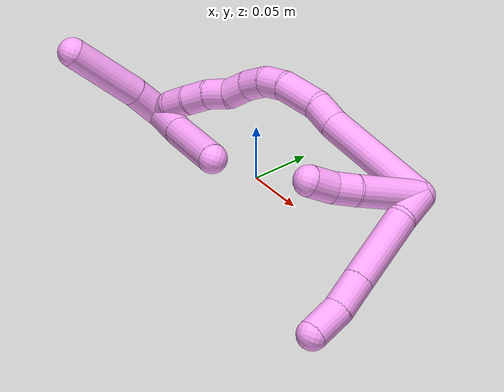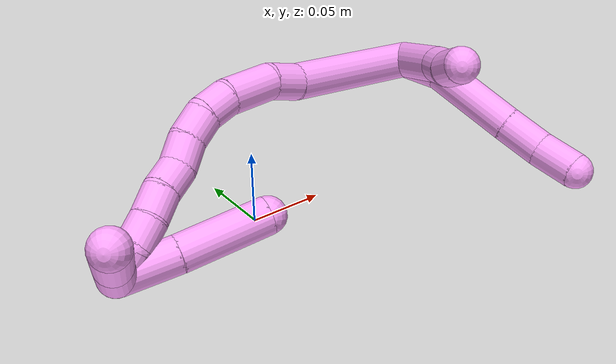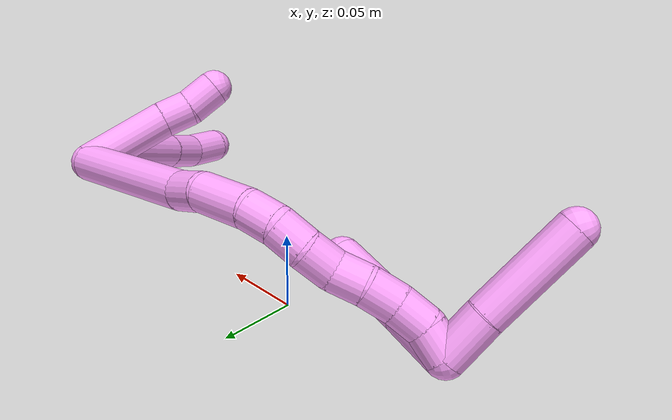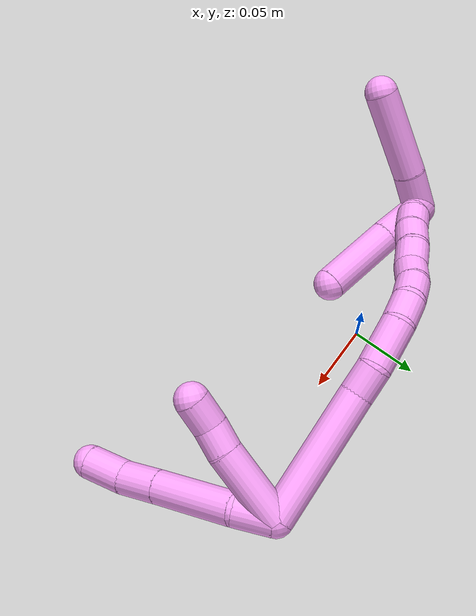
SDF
<sdf version="1.7">
 <world name="default">
  <model name="4">
   <static>0</static>
   <link name="4">
    <collision name="collision-cylinder-e_1_2_8">
     <pose>0.011867 -0.006262 0.005967 0.809455 0.940926 0.428998</pose>
     <geometry><cylinder><radius>0.0125</radius><length>0.029369</length></cylinder></geometry>
     <surface>
      <friction><ode><mu>1.16</mu><mu2>1.16</mu2><slip1>0</slip1><slip2>0</slip2></ode></friction>
      <contact><ode><kp>1e+06</kp><kd>1</kd><max_vel>0</max_vel><min_depth>0.001</min_depth></ode></contact>
     </surface>
    </collision>
    <visual name="visual-cylinder-e_1_2_8">
     <pose>0.011867 -0.006262 0.005967 0.809455 0.940926 0.428998</pose>
     <geometry><cylinder><radius>0.0125</radius><length>0.029369</length></cylinder></geometry>
     <material><ambient>1 0.65098 0.996078 1</ambient></material>
    </visual>
    <collision name="collision-cylinder-e_2_8_9">
     <pose>0.043737 -0.033642 0.022266 1.11583 0.705004 0.451314</pose>
     <geometry><cylinder><radius>0.0125</radius><length>0.061738</length></cylinder></geometry>
     <surface>
      <friction><ode><mu>1.16</mu><mu2>1.16</mu2><slip1>0</slip1><slip2>0</slip2></ode></friction>
      <contact><ode><kp>1e+06</kp><kd>1</kd><max_vel>0</max_vel><min_depth>0.001</min_depth></ode></contact>
     </surface>
    </collision>
    <visual name="visual-cylinder-e_2_8_9">
     <pose>0.043737 -0.033642 0.022266 1.11583 0.705004 0.451314</pose>
     <geometry><cylinder><radius>0.0125</radius><length>0.061738</length></cylinder></geometry>
     <material><ambient>1 0.65098 0.996078 1</ambient></material>
    </visual>
    <collision name="collision-cylinder-e_3_9_10">
     <pose>0.073528 -0.064663 0.037417 1.11783 0.72648 0.466799</pose>
     <geometry><cylinder><radius>0.0125</radius><length>0.029465</length></cylinder></geometry>
     <surface>
      <friction><ode><mu>1.16</mu><mu2>1.16</mu2><slip1>0</slip1><slip2>0</slip2></ode></friction>
      <contact><ode><kp>1e+06</kp><kd>1</kd><max_vel>0</max_vel><min_depth>0.001</min_depth></ode></contact>
     </surface>
    </collision>
    <visual name="visual-cylinder-e_3_9_10">
     <pose>0.073528 -0.064663 0.037417 1.11783 0.72648 0.466799</pose>
     <geometry><cylinder><radius>0.0125</radius><length>0.029465</length></cylinder></geometry>
     <material><ambient>1 0.65098 0.996078 1</ambient></material>
    </visual>
    <collision name="collision-cylinder-e_4_10_6">
     <pose>0.093125 -0.082625 0.04967 0.825837 0.729941 0.331714</pose>
     <geometry><cylinder><radius>0.0125</radius><length>0.029428</length></cylinder></geometry>
     <surface>
      <friction><ode><mu>1.16</mu><mu2>1.16</mu2><slip1>0</slip1><slip2>0</slip2></ode></friction>
      <contact><ode><kp>1e+06</kp><kd>1</kd><max_vel>0</max_vel><min_depth>0.001</min_depth></ode></contact>
     </surface>
    </collision>
    <visual name="visual-cylinder-e_4_10_6">
     <pose>0.093125 -0.082625 0.04967 0.825837 0.729941 0.331714</pose>
     <geometry><cylinder><radius>0.0125</radius><length>0.029428</length></cylinder></geometry>
     <material><ambient>1 0.65098 0.996078 1</ambient></material>
    </visual>
    <collision name="collision-cylinder-e_1_2_11">
     <pose>0.011808 -0.001509 0.026323 0.057279 0.421049 0.012243</pose>
     <geometry><cylinder><radius>0.0125</radius><length>0.05778</length></cylinder></geometry>
     <surface>
      <friction><ode><mu>1.16</mu><mu2>1.16</mu2><slip1>0</slip1><slip2>0</slip2></ode></friction>
      <contact><ode><kp>1e+06</kp><kd>1</kd><max_vel>0</max_vel><min_depth>0.001</min_depth></ode></contact>
     </surface>
    </collision>
    <visual name="visual-cylinder-e_1_2_11">
     <pose>0.011808 -0.001509 0.026323 0.057279 0.421049 0.012243</pose>
     <geometry><cylinder><radius>0.0125</radius><length>0.05778</length></cylinder></geometry>
     <material><ambient>1 0.65098 0.996078 1</ambient></material>
    </visual>
    <collision name="collision-cylinder-e_2_11_12">
     <pose>0.02641 -0.0039 0.062331 0.090724 0.279865 0.012787</pose>
     <geometry><cylinder><radius>0.0125</radius><length>0.020236</length></cylinder></geometry>
     <surface>
      <friction><ode><mu>1.16</mu><mu2>1.16</mu2><slip1>0</slip1><slip2>0</slip2></ode></friction>
      <contact><ode><kp>1e+06</kp><kd>1</kd><max_vel>0</max_vel><min_depth>0.001</min_depth></ode></contact>
     </surface>
    </collision>
    <visual name="visual-cylinder-e_2_11_12">
     <pose>0.02641 -0.0039 0.062331 0.090724 0.279865 0.012787</pose>
     <geometry><cylinder><radius>0.0125</radius><length>0.020236</length></cylinder></geometry>
     <material><ambient>1 0.65098 0.996078 1</ambient></material>
    </visual>
    <collision name="collision-cylinder-e_3_12_5">
     <pose>0.033551 -0.003391 0.082016 -0.138114 0.406419 -0.028502</pose>
     <geometry><cylinder><radius>0.0125</radius><length>0.021984</length></cylinder></geometry>
     <surface>
      <friction><ode><mu>1.16</mu><mu2>1.16</mu2><slip1>0</slip1><slip2>0</slip2></ode></friction>
      <contact><ode><kp>1e+06</kp><kd>1</kd><max_vel>0</max_vel><min_depth>0.001</min_depth></ode></contact>
     </surface>
    </collision>
    <visual name="visual-cylinder-e_3_12_5">
     <pose>0.033551 -0.003391 0.082016 -0.138114 0.406419 -0.028502</pose>
     <geometry><cylinder><radius>0.0125</radius><length>0.021984</length></cylinder></geometry>
     <material><ambient>1 0.65098 0.996078 1</ambient></material>
    </visual>
    <collision name="collision-cylinder-e_1_2_13">
     <pose>-0.03665 0.002116 0.034382 -0.061478 -0.816366 0.026594</pose>
     <geometry><cylinder><radius>0.0125</radius><length>0.100595</length></cylinder></geometry>
     <surface>
      <friction><ode><mu>1.16</mu><mu2>1.16</mu2><slip1>0</slip1><slip2>0</slip2></ode></friction>
      <contact><ode><kp>1e+06</kp><kd>1</kd><max_vel>0</max_vel><min_depth>0.001</min_depth></ode></contact>
     </surface>
    </collision>
    <visual name="visual-cylinder-e_1_2_13">
     <pose>-0.03665 0.002116 0.034382 -0.061478 -0.816366 0.026594</pose>
     <geometry><cylinder><radius>0.0125</radius><length>0.100595</length></cylinder></geometry>
     <material><ambient>1 0.65098 0.996078 1</ambient></material>
    </visual>
    <collision name="collision-cylinder-e_2_13_14">
     <pose>-0.08092 0.006676 0.07658 -0.302983 -0.749434 0.119939</pose>
     <geometry><cylinder><radius>0.0125</radius><length>0.022372</length></cylinder></geometry>
     <surface>
      <friction><ode><mu>1.16</mu><mu2>1.16</mu2><slip1>0</slip1><slip2>0</slip2></ode></friction>
      <contact><ode><kp>1e+06</kp><kd>1</kd><max_vel>0</max_vel><min_depth>0.001</min_depth></ode></contact>
     </surface>
    </collision>
    <visual name="visual-cylinder-e_2_13_14">
     <pose>-0.08092 0.006676 0.07658 -0.302983 -0.749434 0.119939</pose>
     <geometry><cylinder><radius>0.0125</radius><length>0.022372</length></cylinder></geometry>
     <material><ambient>1 0.65098 0.996078 1</ambient></material>
    </visual>
    <collision name="collision-cylinder-e_3_14_15">
     <pose>-0.101326 0.007574 0.097058 0.121493 -0.786594 -0.050461</pose>
     <geometry><cylinder><radius>0.0125</radius><length>0.03612</length></cylinder></geometry>
     <surface>
      <friction><ode><mu>1.16</mu><mu2>1.16</mu2><slip1>0</slip1><slip2>0</slip2></ode></friction>
      <contact><ode><kp>1e+06</kp><kd>1</kd><max_vel>0</max_vel><min_depth>0.001</min_depth></ode></contact>
     </surface>
    </collision>
    <visual name="visual-cylinder-e_3_14_15">
     <pose>-0.101326 0.007574 0.097058 0.121493 -0.786594 -0.050461</pose>
     <geometry><cylinder><radius>0.0125</radius><length>0.03612</length></cylinder></geometry>
     <material><ambient>1 0.65098 0.996078 1</ambient></material>
    </visual>
    <collision name="collision-cylinder-e_4_15_16">
     <pose>-0.12107 0.002605 0.116404 0.473194 -0.747315 -0.188509</pose>
     <geometry><cylinder><radius>0.0125</radius><length>0.020478</length></cylinder></geometry>
     <surface>
      <friction><ode><mu>1.16</mu><mu2>1.16</mu2><slip1>0</slip1><slip2>0</slip2></ode></friction>
      <contact><ode><kp>1e+06</kp><kd>1</kd><max_vel>0</max_vel><min_depth>0.001</min_depth></ode></contact>
     </surface>
    </collision>
    <visual name="visual-cylinder-e_4_15_16">
     <pose>-0.12107 0.002605 0.116404 0.473194 -0.747315 -0.188509</pose>
     <geometry><cylinder><radius>0.0125</radius><length>0.020478</length></cylinder></geometry>
     <material><ambient>1 0.65098 0.996078 1</ambient></material>
    </visual>
    <collision name="collision-cylinder-e_5_16_17">
     <pose>-0.133799 -0.007207 0.128401 0.877265 -0.606918 -0.2917</pose>
     <geometry><cylinder><radius>0.0125</radius><length>0.020231</length></cylinder></geometry>
     <surface>
      <friction><ode><mu>1.16</mu><mu2>1.16</mu2><slip1>0</slip1><slip2>0</slip2></ode></friction>
      <contact><ode><kp>1e+06</kp><kd>1</kd><max_vel>0</max_vel><min_depth>0.001</min_depth></ode></contact>
     </surface>
    </collision>
    <visual name="visual-cylinder-e_5_16_17">
     <pose>-0.133799 -0.007207 0.128401 0.877265 -0.606918 -0.2917</pose>
     <geometry><cylinder><radius>0.0125</radius><length>0.020231</length></cylinder></geometry>
     <material><ambient>1 0.65098 0.996078 1</ambient></material>
    </visual>
    <collision name="collision-cylinder-e_6_17_18">
     <pose>-0.143329 -0.02126 0.139 0.966801 -0.383912 -0.20334</pose>
     <geometry><cylinder><radius>0.0125</radius><length>0.020084</length></cylinder></geometry>
     <surface>
      <friction><ode><mu>1.16</mu><mu2>1.16</mu2><slip1>0</slip1><slip2>0</slip2></ode></friction>
      <contact><ode><kp>1e+06</kp><kd>1</kd><max_vel>0</max_vel><min_depth>0.001</min_depth></ode></contact>
     </surface>
    </collision>
    <visual name="visual-cylinder-e_6_17_18">
     <pose>-0.143329 -0.02126 0.139 0.966801 -0.383912 -0.20334</pose>
     <geometry><cylinder><radius>0.0125</radius><length>0.020084</length></cylinder></geometry>
     <material><ambient>1 0.65098 0.996078 1</ambient></material>
    </visual>
    <collision name="collision-cylinder-e_7_18_19">
     <pose>-0.151832 -0.033967 0.151565 0.605967 -0.491717 -0.156568</pose>
     <geometry><cylinder><radius>0.0125</radius><length>0.020087</length></cylinder></geometry>
     <surface>
      <friction><ode><mu>1.16</mu><mu2>1.16</mu2><slip1>0</slip1><slip2>0</slip2></ode></friction>
      <contact><ode><kp>1e+06</kp><kd>1</kd><max_vel>0</max_vel><min_depth>0.001</min_depth></ode></contact>
     </surface>
    </collision>
    <visual name="visual-cylinder-e_7_18_19">
     <pose>-0.151832 -0.033967 0.151565 0.605967 -0.491717 -0.156568</pose>
     <geometry><cylinder><radius>0.0125</radius><length>0.020087</length></cylinder></geometry>
     <material><ambient>1 0.65098 0.996078 1</ambient></material>
    </visual>
    <collision name="collision-cylinder-e_8_19_20">
     <pose>-0.160527 -0.04577 0.165088 0.825037 -0.40567 -0.179525</pose>
     <geometry><cylinder><radius>0.0125</radius><length>0.020033</length></cylinder></geometry>
     <surface>
      <friction><ode><mu>1.16</mu><mu2>1.16</mu2><slip1>0</slip1><slip2>0</slip2></ode></friction>
      <contact><ode><kp>1e+06</kp><kd>1</kd><max_vel>0</max_vel><min_depth>0.001</min_depth></ode></contact>
     </surface>
    </collision>
    <visual name="visual-cylinder-e_8_19_20">
     <pose>-0.160527 -0.04577 0.165088 0.825037 -0.40567 -0.179525</pose>
     <geometry><cylinder><radius>0.0125</radius><length>0.020033</length></cylinder></geometry>
     <material><ambient>1 0.65098 0.996078 1</ambient></material>
    </visual>
    <collision name="collision-cylinder-e_9_20_21">
     <pose>-0.169512 -0.059363 0.176623 0.911928 -0.527322 -0.263249</pose>
     <geometry><cylinder><radius>0.0125</radius><length>0.02</length></cylinder></geometry>
     <surface>
      <friction><ode><mu>1.16</mu><mu2>1.16</mu2><slip1>0</slip1><slip2>0</slip2></ode></friction>
      <contact><ode><kp>1e+06</kp><kd>1</kd><max_vel>0</max_vel><min_depth>0.001</min_depth></ode></contact>
     </surface>
    </collision>
    <visual name="visual-cylinder-e_9_20_21">
     <pose>-0.169512 -0.059363 0.176623 0.911928 -0.527322 -0.263249</pose>
     <geometry><cylinder><radius>0.0125</radius><length>0.02</length></cylinder></geometry>
     <material><ambient>1 0.65098 0.996078 1</ambient></material>
    </visual>
    <collision name="collision-cylinder-e_10_21_1">
     <pose>-0.18085 -0.073601 0.184238 1.26666 -0.682319 -0.51001</pose>
     <geometry><cylinder><radius>0.0125</radius><length>0.02</length></cylinder></geometry>
     <surface>
      <friction><ode><mu>1.16</mu><mu2>1.16</mu2><slip1>0</slip1><slip2>0</slip2></ode></friction>
      <contact><ode><kp>1e+06</kp><kd>1</kd><max_vel>0</max_vel><min_depth>0.001</min_depth></ode></contact>
     </surface>
    </collision>
    <visual name="visual-cylinder-e_10_21_1">
     <pose>-0.18085 -0.073601 0.184238 1.26666 -0.682319 -0.51001</pose>
     <geometry><cylinder><radius>0.0125</radius><length>0.02</length></cylinder></geometry>
     <material><ambient>1 0.65098 0.996078 1</ambient></material>
    </visual>
    <collision name="collision-cylinder-e_1_1_22">
     <pose>-0.183172 -0.074276 0.200639 -0.445965 0.250024 -0.056976</pose>
     <geometry><cylinder><radius>0.0125</radius><length>0.032207</length></cylinder></geometry>
     <surface>
      <friction><ode><mu>1.16</mu><mu2>1.16</mu2><slip1>0</slip1><slip2>0</slip2></ode></friction>
      <contact><ode><kp>1e+06</kp><kd>1</kd><max_vel>0</max_vel><min_depth>0.001</min_depth></ode></contact>
     </surface>
    </collision>
    <visual name="visual-cylinder-e_1_1_22">
     <pose>-0.183172 -0.074276 0.200639 -0.445965 0.250024 -0.056976</pose>
     <geometry><cylinder><radius>0.0125</radius><length>0.032207</length></cylinder></geometry>
     <material><ambient>1 0.65098 0.996078 1</ambient></material>
    </visual>
    <collision name="collision-cylinder-e_2_22_4">
     <pose>-0.169967 -0.05619 0.245293 -0.35561 0.275483 -0.04981</pose>
     <geometry><cylinder><radius>0.0125</radius><length>0.067793</length></cylinder></geometry>
     <surface>
      <friction><ode><mu>1.16</mu><mu2>1.16</mu2><slip1>0</slip1><slip2>0</slip2></ode></friction>
      <contact><ode><kp>1e+06</kp><kd>1</kd><max_vel>0</max_vel><min_depth>0.001</min_depth></ode></contact>
     </surface>
    </collision>
    <visual name="visual-cylinder-e_2_22_4">
     <pose>-0.169967 -0.05619 0.245293 -0.35561 0.275483 -0.04981</pose>
     <geometry><cylinder><radius>0.0125</radius><length>0.067793</length></cylinder></geometry>
     <material><ambient>1 0.65098 0.996078 1</ambient></material>
    </visual>
    <collision name="collision-cylinder-e_1_1_23">
     <pose>-0.169287 -0.078862 0.178665 -2.87646 1.14136 -2.73196</pose>
     <geometry><cylinder><radius>0.0125</radius><length>0.039307</length></cylinder></geometry>
     <surface>
      <friction><ode><mu>1.16</mu><mu2>1.16</mu2><slip1>0</slip1><slip2>0</slip2></ode></friction>
      <contact><ode><kp>1e+06</kp><kd>1</kd><max_vel>0</max_vel><min_depth>0.001</min_depth></ode></contact>
     </surface>
    </collision>
    <visual name="visual-cylinder-e_1_1_23">
     <pose>-0.169287 -0.078862 0.178665 -2.87646 1.14136 -2.73196</pose>
     <geometry><cylinder><radius>0.0125</radius><length>0.039307</length></cylinder></geometry>
     <material><ambient>1 0.65098 0.996078 1</ambient></material>
    </visual>
    <collision name="collision-cylinder-e_2_23_3">
     <pose>-0.124332 -0.072066 0.1579 -2.7947 1.10301 -2.58668</pose>
     <geometry><cylinder><radius>0.0125</radius><length>0.060693</length></cylinder></geometry>
     <surface>
      <friction><ode><mu>1.16</mu><mu2>1.16</mu2><slip1>0</slip1><slip2>0</slip2></ode></friction>
      <contact><ode><kp>1e+06</kp><kd>1</kd><max_vel>0</max_vel><min_depth>0.001</min_depth></ode></contact>
     </surface>
    </collision>
    <visual name="visual-cylinder-e_2_23_3">
     <pose>-0.124332 -0.072066 0.1579 -2.7947 1.10301 -2.58668</pose>
     <geometry><cylinder><radius>0.0125</radius><length>0.060693</length></cylinder></geometry>
     <material><ambient>1 0.65098 0.996078 1</ambient></material>
    </visual>
    <collision name="collision-sphere-3">
     <pose>-0.097246 -0.067414 0.145031 0 -0 0</pose>
     <geometry><sphere><radius>0.0125</radius></sphere></geometry>
     <surface>
      <friction><ode><mu>1.16</mu><mu2>1.16</mu2><slip1>0</slip1><slip2>0</slip2></ode></friction>
      <contact><ode><kp>1e+06</kp><kd>1</kd><max_vel>0</max_vel><min_depth>0.001</min_depth></ode></contact>
     </surface>
    </collision>
    <visual name="visual-sphere-3">
     <pose>-0.097246 -0.067414 0.145031 0 -0 0</pose>
     <geometry><sphere><radius>0.0125</radius></sphere></geometry>
     <material><ambient>1 0.65098 0.996078 1</ambient></material>
    </visual>
    <collision name="collision-sphere-23">
     <pose>-0.151418 -0.076718 0.170768 0 -0 0</pose>
     <geometry><sphere><radius>0.0125</radius></sphere></geometry>
     <surface>
      <friction><ode><mu>1.16</mu><mu2>1.16</mu2><slip1>0</slip1><slip2>0</slip2></ode></friction>
      <contact><ode><kp>1e+06</kp><kd>1</kd><max_vel>0</max_vel><min_depth>0.001</min_depth></ode></contact>
     </surface>
    </collision>
    <visual name="visual-sphere-23">
     <pose>-0.151418 -0.076718 0.170768 0 -0 0</pose>
     <geometry><sphere><radius>0.0125</radius></sphere></geometry>
     <material><ambient>1 0.65098 0.996078 1</ambient></material>
    </visual>
    <collision name="collision-sphere-4">
     <pose>-0.160747 -0.044833 0.275871 0 -0 0</pose>
     <geometry><sphere><radius>0.0125</radius></sphere></geometry>
     <surface>
      <friction><ode><mu>1.16</mu><mu2>1.16</mu2><slip1>0</slip1><slip2>0</slip2></ode></friction>
      <contact><ode><kp>1e+06</kp><kd>1</kd><max_vel>0</max_vel><min_depth>0.001</min_depth></ode></contact>
     </surface>
    </collision>
    <visual name="visual-sphere-4">
     <pose>-0.160747 -0.044833 0.275871 0 -0 0</pose>
     <geometry><sphere><radius>0.0125</radius></sphere></geometry>
     <material><ambient>1 0.65098 0.996078 1</ambient></material>
    </visual>
    <collision name="collision-sphere-22">
     <pose>-0.179188 -0.067546 0.214715 0 -0 0</pose>
     <geometry><sphere><radius>0.0125</radius></sphere></geometry>
     <surface>
      <friction><ode><mu>1.16</mu><mu2>1.16</mu2><slip1>0</slip1><slip2>0</slip2></ode></friction>
      <contact><ode><kp>1e+06</kp><kd>1</kd><max_vel>0</max_vel><min_depth>0.001</min_depth></ode></contact>
     </surface>
    </collision>
    <visual name="visual-sphere-22">
     <pose>-0.179188 -0.067546 0.214715 0 -0 0</pose>
     <geometry><sphere><radius>0.0125</radius></sphere></geometry>
     <material><ambient>1 0.65098 0.996078 1</ambient></material>
    </visual>
    <collision name="collision-sphere-1">
     <pose>-0.187156 -0.081006 0.186562 0 -0 0</pose>
     <geometry><sphere><radius>0.0125</radius></sphere></geometry>
     <surface>
      <friction><ode><mu>1.16</mu><mu2>1.16</mu2><slip1>0</slip1><slip2>0</slip2></ode></friction>
      <contact><ode><kp>1e+06</kp><kd>1</kd><max_vel>0</max_vel><min_depth>0.001</min_depth></ode></contact>
     </surface>
    </collision>
    <visual name="visual-sphere-1">
     <pose>-0.187156 -0.081006 0.186562 0 -0 0</pose>
     <geometry><sphere><radius>0.0125</radius></sphere></geometry>
     <material><ambient>1 0.65098 0.996078 1</ambient></material>
    </visual>
    <collision name="collision-sphere-21">
     <pose>-0.174544 -0.066196 0.181914 0 -0 0</pose>
     <geometry><sphere><radius>0.0125</radius></sphere></geometry>
     <surface>
      <friction><ode><mu>1.16</mu><mu2>1.16</mu2><slip1>0</slip1><slip2>0</slip2></ode></friction>
      <contact><ode><kp>1e+06</kp><kd>1</kd><max_vel>0</max_vel><min_depth>0.001</min_depth></ode></contact>
     </surface>
    </collision>
    <visual name="visual-sphere-21">
     <pose>-0.174544 -0.066196 0.181914 0 -0 0</pose>
     <geometry><sphere><radius>0.0125</radius></sphere></geometry>
     <material><ambient>1 0.65098 0.996078 1</ambient></material>
    </visual>
    <collision name="collision-sphere-11">
     <pose>0.023616 -0.003019 0.052647 0 -0 0</pose>
     <geometry><sphere><radius>0.0125</radius></sphere></geometry>
     <surface>
      <friction><ode><mu>1.16</mu><mu2>1.16</mu2><slip1>0</slip1><slip2>0</slip2></ode></friction>
      <contact><ode><kp>1e+06</kp><kd>1</kd><max_vel>0</max_vel><min_depth>0.001</min_depth></ode></contact>
     </surface>
    </collision>
    <visual name="visual-sphere-11">
     <pose>0.023616 -0.003019 0.052647 0 -0 0</pose>
     <geometry><sphere><radius>0.0125</radius></sphere></geometry>
     <material><ambient>1 0.65098 0.996078 1</ambient></material>
    </visual>
    <collision name="collision-sphere-6">
     <pose>0.102937 -0.090686 0.057104 0 -0 0</pose>
     <geometry><sphere><radius>0.0125</radius></sphere></geometry>
     <surface>
      <friction><ode><mu>1.16</mu><mu2>1.16</mu2><slip1>0</slip1><slip2>0</slip2></ode></friction>
      <contact><ode><kp>1e+06</kp><kd>1</kd><max_vel>0</max_vel><min_depth>0.001</min_depth></ode></contact>
     </surface>
    </collision>
    <visual name="visual-sphere-6">
     <pose>0.102937 -0.090686 0.057104 0 -0 0</pose>
     <geometry><sphere><radius>0.0125</radius></sphere></geometry>
     <material><ambient>1 0.65098 0.996078 1</ambient></material>
    </visual>
    <collision name="collision-sphere-10">
     <pose>0.083314 -0.074565 0.042236 0 -0 0</pose>
     <geometry><sphere><radius>0.0125</radius></sphere></geometry>
     <surface>
      <friction><ode><mu>1.16</mu><mu2>1.16</mu2><slip1>0</slip1><slip2>0</slip2></ode></friction>
      <contact><ode><kp>1e+06</kp><kd>1</kd><max_vel>0</max_vel><min_depth>0.001</min_depth></ode></contact>
     </surface>
    </collision>
    <visual name="visual-sphere-10">
     <pose>0.083314 -0.074565 0.042236 0 -0 0</pose>
     <geometry><sphere><radius>0.0125</radius></sphere></geometry>
     <material><ambient>1 0.65098 0.996078 1</ambient></material>
    </visual>
    <collision name="collision-sphere-9">
     <pose>0.063742 -0.05476 0.032597 0 -0 0</pose>
     <geometry><sphere><radius>0.0125</radius></sphere></geometry>
     <surface>
      <friction><ode><mu>1.16</mu><mu2>1.16</mu2><slip1>0</slip1><slip2>0</slip2></ode></friction>
      <contact><ode><kp>1e+06</kp><kd>1</kd><max_vel>0</max_vel><min_depth>0.001</min_depth></ode></contact>
     </surface>
    </collision>
    <visual name="visual-sphere-9">
     <pose>0.063742 -0.05476 0.032597 0 -0 0</pose>
     <geometry><sphere><radius>0.0125</radius></sphere></geometry>
     <material><ambient>1 0.65098 0.996078 1</ambient></material>
    </visual>
    <collision name="collision-sphere-2">
     <geometry><sphere><radius>0.0125</radius></sphere></geometry>
     <surface>
      <friction><ode><mu>1.16</mu><mu2>1.16</mu2><slip1>0</slip1><slip2>0</slip2></ode></friction>
      <contact><ode><kp>1e+06</kp><kd>1</kd><max_vel>0</max_vel><min_depth>0.001</min_depth></ode></contact>
     </surface>
    </collision>
    <visual name="visual-sphere-2">
     <geometry><sphere><radius>0.0125</radius></sphere></geometry>
     <material><ambient>1 0.65098 0.996078 1</ambient></material>
    </visual>
    <collision name="collision-sphere-19">
     <pose>-0.156574 -0.039009 0.158843 0 -0 0</pose>
     <geometry><sphere><radius>0.0125</radius></sphere></geometry>
     <surface>
      <friction><ode><mu>1.16</mu><mu2>1.16</mu2><slip1>0</slip1><slip2>0</slip2></ode></friction>
      <contact><ode><kp>1e+06</kp><kd>1</kd><max_vel>0</max_vel><min_depth>0.001</min_depth></ode></contact>
     </surface>
    </collision>
    <visual name="visual-sphere-19">
     <pose>-0.156574 -0.039009 0.158843 0 -0 0</pose>
     <geometry><sphere><radius>0.0125</radius></sphere></geometry>
     <material><ambient>1 0.65098 0.996078 1</ambient></material>
    </visual>
    <collision name="collision-sphere-8">
     <pose>0.023733 -0.012523 0.011935 0 -0 0</pose>
     <geometry><sphere><radius>0.0125</radius></sphere></geometry>
     <surface>
      <friction><ode><mu>1.16</mu><mu2>1.16</mu2><slip1>0</slip1><slip2>0</slip2></ode></friction>
      <contact><ode><kp>1e+06</kp><kd>1</kd><max_vel>0</max_vel><min_depth>0.001</min_depth></ode></contact>
     </surface>
    </collision>
    <visual name="visual-sphere-8">
     <pose>0.023733 -0.012523 0.011935 0 -0 0</pose>
     <geometry><sphere><radius>0.0125</radius></sphere></geometry>
     <material><ambient>1 0.65098 0.996078 1</ambient></material>
    </visual>
    <collision name="collision-sphere-12">
     <pose>0.029205 -0.004781 0.072016 0 -0 0</pose>
     <geometry><sphere><radius>0.0125</radius></sphere></geometry>
     <surface>
      <friction><ode><mu>1.16</mu><mu2>1.16</mu2><slip1>0</slip1><slip2>0</slip2></ode></friction>
      <contact><ode><kp>1e+06</kp><kd>1</kd><max_vel>0</max_vel><min_depth>0.001</min_depth></ode></contact>
     </surface>
    </collision>
    <visual name="visual-sphere-12">
     <pose>0.029205 -0.004781 0.072016 0 -0 0</pose>
     <geometry><sphere><radius>0.0125</radius></sphere></geometry>
     <material><ambient>1 0.65098 0.996078 1</ambient></material>
    </visual>
    <collision name="collision-sphere-5">
     <pose>0.037896 -0.002001 0.092017 0 -0 0</pose>
     <geometry><sphere><radius>0.0125</radius></sphere></geometry>
     <surface>
      <friction><ode><mu>1.16</mu><mu2>1.16</mu2><slip1>0</slip1><slip2>0</slip2></ode></friction>
      <contact><ode><kp>1e+06</kp><kd>1</kd><max_vel>0</max_vel><min_depth>0.001</min_depth></ode></contact>
     </surface>
    </collision>
    <visual name="visual-sphere-5">
     <pose>0.037896 -0.002001 0.092017 0 -0 0</pose>
     <geometry><sphere><radius>0.0125</radius></sphere></geometry>
     <material><ambient>1 0.65098 0.996078 1</ambient></material>
    </visual>
    <collision name="collision-sphere-13">
     <pose>-0.073299 0.004233 0.068764 0 -0 0</pose>
     <geometry><sphere><radius>0.0125</radius></sphere></geometry>
     <surface>
      <friction><ode><mu>1.16</mu><mu2>1.16</mu2><slip1>0</slip1><slip2>0</slip2></ode></friction>
      <contact><ode><kp>1e+06</kp><kd>1</kd><max_vel>0</max_vel><min_depth>0.001</min_depth></ode></contact>
     </surface>
    </collision>
    <visual name="visual-sphere-13">
     <pose>-0.073299 0.004233 0.068764 0 -0 0</pose>
     <geometry><sphere><radius>0.0125</radius></sphere></geometry>
     <material><ambient>1 0.65098 0.996078 1</ambient></material>
    </visual>
    <collision name="collision-sphere-14">
     <pose>-0.08854 0.00912 0.084396 0 -0 0</pose>
     <geometry><sphere><radius>0.0125</radius></sphere></geometry>
     <surface>
      <friction><ode><mu>1.16</mu><mu2>1.16</mu2><slip1>0</slip1><slip2>0</slip2></ode></friction>
      <contact><ode><kp>1e+06</kp><kd>1</kd><max_vel>0</max_vel><min_depth>0.001</min_depth></ode></contact>
     </surface>
    </collision>
    <visual name="visual-sphere-14">
     <pose>-0.08854 0.00912 0.084396 0 -0 0</pose>
     <geometry><sphere><radius>0.0125</radius></sphere></geometry>
     <material><ambient>1 0.65098 0.996078 1</ambient></material>
    </visual>
    <collision name="collision-sphere-15">
     <pose>-0.114111 0.006028 0.109719 0 -0 0</pose>
     <geometry><sphere><radius>0.0125</radius></sphere></geometry>
     <surface>
      <friction><ode><mu>1.16</mu><mu2>1.16</mu2><slip1>0</slip1><slip2>0</slip2></ode></friction>
      <contact><ode><kp>1e+06</kp><kd>1</kd><max_vel>0</max_vel><min_depth>0.001</min_depth></ode></contact>
     </surface>
    </collision>
    <visual name="visual-sphere-15">
     <pose>-0.114111 0.006028 0.109719 0 -0 0</pose>
     <geometry><sphere><radius>0.0125</radius></sphere></geometry>
     <material><ambient>1 0.65098 0.996078 1</ambient></material>
    </visual>
    <collision name="collision-sphere-16">
     <pose>-0.128029 -0.000818 0.123089 0 -0 0</pose>
     <geometry><sphere><radius>0.0125</radius></sphere></geometry>
     <surface>
      <friction><ode><mu>1.16</mu><mu2>1.16</mu2><slip1>0</slip1><slip2>0</slip2></ode></friction>
      <contact><ode><kp>1e+06</kp><kd>1</kd><max_vel>0</max_vel><min_depth>0.001</min_depth></ode></contact>
     </surface>
    </collision>
    <visual name="visual-sphere-16">
     <pose>-0.128029 -0.000818 0.123089 0 -0 0</pose>
     <geometry><sphere><radius>0.0125</radius></sphere></geometry>
     <material><ambient>1 0.65098 0.996078 1</ambient></material>
    </visual>
    <collision name="collision-sphere-17">
     <pose>-0.139568 -0.013597 0.133712 0 -0 0</pose>
     <geometry><sphere><radius>0.0125</radius></sphere></geometry>
     <surface>
      <friction><ode><mu>1.16</mu><mu2>1.16</mu2><slip1>0</slip1><slip2>0</slip2></ode></friction>
      <contact><ode><kp>1e+06</kp><kd>1</kd><max_vel>0</max_vel><min_depth>0.001</min_depth></ode></contact>
     </surface>
    </collision>
    <visual name="visual-sphere-17">
     <pose>-0.139568 -0.013597 0.133712 0 -0 0</pose>
     <geometry><sphere><radius>0.0125</radius></sphere></geometry>
     <material><ambient>1 0.65098 0.996078 1</ambient></material>
    </visual>
    <collision name="collision-sphere-18">
     <pose>-0.14709 -0.028924 0.144288 0 -0 0</pose>
     <geometry><sphere><radius>0.0125</radius></sphere></geometry>
     <surface>
      <friction><ode><mu>1.16</mu><mu2>1.16</mu2><slip1>0</slip1><slip2>0</slip2></ode></friction>
      <contact><ode><kp>1e+06</kp><kd>1</kd><max_vel>0</max_vel><min_depth>0.001</min_depth></ode></contact>
     </surface>
    </collision>
    <visual name="visual-sphere-18">
     <pose>-0.14709 -0.028924 0.144288 0 -0 0</pose>
     <geometry><sphere><radius>0.0125</radius></sphere></geometry>
     <material><ambient>1 0.65098 0.996078 1</ambient></material>
    </visual>
    <collision name="collision-sphere-20">
     <pose>-0.16448 -0.052531 0.171333 0 -0 0</pose>
     <geometry><sphere><radius>0.0125</radius></sphere></geometry>
     <surface>
      <friction><ode><mu>1.16</mu><mu2>1.16</mu2><slip1>0</slip1><slip2>0</slip2></ode></friction>
      <contact><ode><kp>1e+06</kp><kd>1</kd><max_vel>0</max_vel><min_depth>0.001</min_depth></ode></contact>
     </surface>
    </collision>
    <visual name="visual-sphere-20">
     <pose>-0.16448 -0.052531 0.171333 0 -0 0</pose>
     <geometry><sphere><radius>0.0125</radius></sphere></geometry>
     <material><ambient>1 0.65098 0.996078 1</ambient></material>
    </visual>
    <inertial>
     <pose>-0.069609 -0.032874 0.104555 0 -0 0</pose>
     <mass>0.75</mass>
     <inertia><ixx>0.000144</ixx><ixy>0</ixy><ixz>0</ixz><iyy>0.000196</iyy><iyz>0</iyz><izz>5e-05</izz></inertia>
    </inertial>
   </link>
   <pose>0.157475 0.037262 0.056443 1.20781 -0.187309 -0.63796</pose>
  </model>
 </world>
</sdf>
